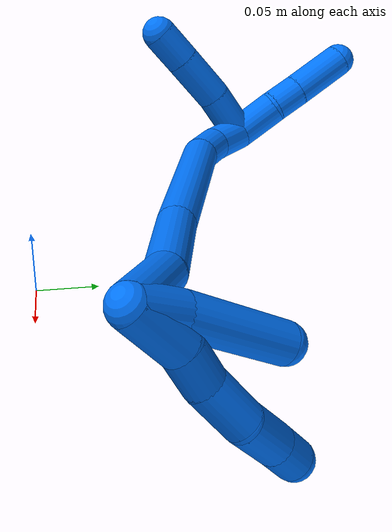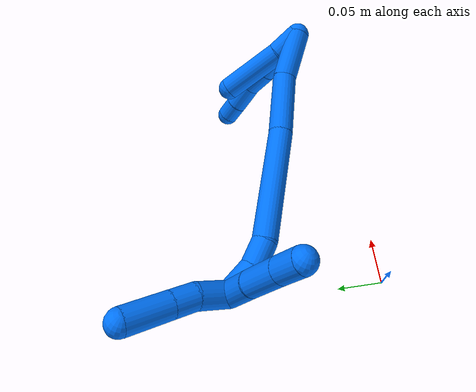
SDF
<sdf version="1.7">
 <world name="default">
  <model name="14">
   <static>0</static>
   <link name="14">
    <collision name="collision-cylinder-e_1_2_8">
     <pose>0.003959 0.004363 -0.018154 -2.90571 0.20896 -1.44891</pose>
     <geometry><cylinder><radius>0.0125</radius><length>0.038173</length></cylinder></geometry>
     <surface>
      <friction><ode><mu>1.16</mu><mu2>1.16</mu2><slip1>0</slip1><slip2>0</slip2></ode></friction>
      <contact><ode><kp>1e+06</kp><kd>1</kd><max_vel>0</max_vel><min_depth>0.001</min_depth></ode></contact>
     </surface>
    </collision>
    <visual name="visual-cylinder-e_1_2_8">
     <pose>0.003959 0.004363 -0.018154 -2.90571 0.20896 -1.44891</pose>
     <geometry><cylinder><radius>0.0125</radius><length>0.038173</length></cylinder></geometry>
     <material><ambient>0 0.462745 1 1</ambient></material>
    </visual>
    <collision name="collision-cylinder-e_2_8_9">
     <pose>0.011918 0.008825 -0.048424 -3.13349 0.318813 -3.09123</pose>
     <geometry><cylinder><radius>0.0125</radius><length>0.025517</length></cylinder></geometry>
     <surface>
      <friction><ode><mu>1.16</mu><mu2>1.16</mu2><slip1>0</slip1><slip2>0</slip2></ode></friction>
      <contact><ode><kp>1e+06</kp><kd>1</kd><max_vel>0</max_vel><min_depth>0.001</min_depth></ode></contact>
     </surface>
    </collision>
    <visual name="visual-cylinder-e_2_8_9">
     <pose>0.011918 0.008825 -0.048424 -3.13349 0.318813 -3.09123</pose>
     <geometry><cylinder><radius>0.0125</radius><length>0.025517</length></cylinder></geometry>
     <material><ambient>0 0.462745 1 1</ambient></material>
    </visual>
    <collision name="collision-cylinder-e_3_9_10">
     <pose>0.021602 0.012352 -0.075703 -2.91922 0.350565 -2.01661</pose>
     <geometry><cylinder><radius>0.0125</radius><length>0.033107</length></cylinder></geometry>
     <surface>
      <friction><ode><mu>1.16</mu><mu2>1.16</mu2><slip1>0</slip1><slip2>0</slip2></ode></friction>
      <contact><ode><kp>1e+06</kp><kd>1</kd><max_vel>0</max_vel><min_depth>0.001</min_depth></ode></contact>
     </surface>
    </collision>
    <visual name="visual-cylinder-e_3_9_10">
     <pose>0.021602 0.012352 -0.075703 -2.91922 0.350565 -2.01661</pose>
     <geometry><cylinder><radius>0.0125</radius><length>0.033107</length></cylinder></geometry>
     <material><ambient>0 0.462745 1 1</ambient></material>
    </visual>
    <collision name="collision-cylinder-e_4_10_11">
     <pose>0.028377 0.018653 -0.106677 -2.96189 0.067752 -0.719544</pose>
     <geometry><cylinder><radius>0.0125</radius><length>0.032212</length></cylinder></geometry>
     <surface>
      <friction><ode><mu>1.16</mu><mu2>1.16</mu2><slip1>0</slip1><slip2>0</slip2></ode></friction>
      <contact><ode><kp>1e+06</kp><kd>1</kd><max_vel>0</max_vel><min_depth>0.001</min_depth></ode></contact>
     </surface>
    </collision>
    <visual name="visual-cylinder-e_4_10_11">
     <pose>0.028377 0.018653 -0.106677 -2.96189 0.067752 -0.719544</pose>
     <geometry><cylinder><radius>0.0125</radius><length>0.032212</length></cylinder></geometry>
     <material><ambient>0 0.462745 1 1</ambient></material>
    </visual>
    <collision name="collision-cylinder-e_5_11_6">
     <pose>0.030719 0.02337 -0.132743 -2.96366 0.1195 -1.18146</pose>
     <geometry><cylinder><radius>0.0125</radius><length>0.020991</length></cylinder></geometry>
     <surface>
      <friction><ode><mu>1.16</mu><mu2>1.16</mu2><slip1>0</slip1><slip2>0</slip2></ode></friction>
      <contact><ode><kp>1e+06</kp><kd>1</kd><max_vel>0</max_vel><min_depth>0.001</min_depth></ode></contact>
     </surface>
    </collision>
    <visual name="visual-cylinder-e_5_11_6">
     <pose>0.030719 0.02337 -0.132743 -2.96366 0.1195 -1.18146</pose>
     <geometry><cylinder><radius>0.0125</radius><length>0.020991</length></cylinder></geometry>
     <material><ambient>0 0.462745 1 1</ambient></material>
    </visual>
    <collision name="collision-cylinder-e_1_2_12">
     <pose>-0.002387 0.007443 -0.013388 -2.6342 -0.154604 0.580582</pose>
     <geometry><cylinder><radius>0.0125</radius><length>0.031004</length></cylinder></geometry>
     <surface>
      <friction><ode><mu>1.16</mu><mu2>1.16</mu2><slip1>0</slip1><slip2>0</slip2></ode></friction>
      <contact><ode><kp>1e+06</kp><kd>1</kd><max_vel>0</max_vel><min_depth>0.001</min_depth></ode></contact>
     </surface>
    </collision>
    <visual name="visual-cylinder-e_1_2_12">
     <pose>-0.002387 0.007443 -0.013388 -2.6342 -0.154604 0.580582</pose>
     <geometry><cylinder><radius>0.0125</radius><length>0.031004</length></cylinder></geometry>
     <material><ambient>0 0.462745 1 1</ambient></material>
    </visual>
    <collision name="collision-cylinder-e_2_12_5">
     <pose>-0.004201 0.032487 -0.056439 -2.60605 0.016626 -0.060584</pose>
     <geometry><cylinder><radius>0.0125</radius><length>0.068996</length></cylinder></geometry>
     <surface>
      <friction><ode><mu>1.16</mu><mu2>1.16</mu2><slip1>0</slip1><slip2>0</slip2></ode></friction>
      <contact><ode><kp>1e+06</kp><kd>1</kd><max_vel>0</max_vel><min_depth>0.001</min_depth></ode></contact>
     </surface>
    </collision>
    <visual name="visual-cylinder-e_2_12_5">
     <pose>-0.004201 0.032487 -0.056439 -2.60605 0.016626 -0.060584</pose>
     <geometry><cylinder><radius>0.0125</radius><length>0.068996</length></cylinder></geometry>
     <material><ambient>0 0.462745 1 1</ambient></material>
    </visual>
    <collision name="collision-cylinder-e_1_2_13">
     <pose>-0.020091 0.004724 -0.01833 -2.88936 -0.815184 2.57035</pose>
     <geometry><cylinder><radius>0.0125</radius><length>0.055207</length></cylinder></geometry>
     <surface>
      <friction><ode><mu>1.16</mu><mu2>1.16</mu2><slip1>0</slip1><slip2>0</slip2></ode></friction>
      <contact><ode><kp>1e+06</kp><kd>1</kd><max_vel>0</max_vel><min_depth>0.001</min_depth></ode></contact>
     </surface>
    </collision>
    <visual name="visual-cylinder-e_1_2_13">
     <pose>-0.020091 0.004724 -0.01833 -2.88936 -0.815184 2.57035</pose>
     <geometry><cylinder><radius>0.0125</radius><length>0.055207</length></cylinder></geometry>
     <material><ambient>0 0.462745 1 1</ambient></material>
    </visual>
    <collision name="collision-cylinder-e_2_13_14">
     <pose>-0.06976 0.01134 -0.053275 -3.02823 -1.05623 2.94768</pose>
     <geometry><cylinder><radius>0.0125</radius><length>0.067955</length></cylinder></geometry>
     <surface>
      <friction><ode><mu>1.16</mu><mu2>1.16</mu2><slip1>0</slip1><slip2>0</slip2></ode></friction>
      <contact><ode><kp>1e+06</kp><kd>1</kd><max_vel>0</max_vel><min_depth>0.001</min_depth></ode></contact>
     </surface>
    </collision>
    <visual name="visual-cylinder-e_2_13_14">
     <pose>-0.06976 0.01134 -0.053275 -3.02823 -1.05623 2.94768</pose>
     <geometry><cylinder><radius>0.0125</radius><length>0.067955</length></cylinder></geometry>
     <material><ambient>0 0.462745 1 1</ambient></material>
    </visual>
    <collision name="collision-cylinder-e_3_14_15">
     <pose>-0.151264 0.021557 -0.097072 -2.84436 -1.06989 2.64663</pose>
     <geometry><cylinder><radius>0.0125</radius><length>0.118397</length></cylinder></geometry>
     <surface>
      <friction><ode><mu>1.16</mu><mu2>1.16</mu2><slip1>0</slip1><slip2>0</slip2></ode></friction>
      <contact><ode><kp>1e+06</kp><kd>1</kd><max_vel>0</max_vel><min_depth>0.001</min_depth></ode></contact>
     </surface>
    </collision>
    <visual name="visual-cylinder-e_3_14_15">
     <pose>-0.151264 0.021557 -0.097072 -2.84436 -1.06989 2.64663</pose>
     <geometry><cylinder><radius>0.0125</radius><length>0.118397</length></cylinder></geometry>
     <material><ambient>0 0.462745 1 1</ambient></material>
    </visual>
    <collision name="collision-cylinder-e_4_15_16">
     <pose>-0.213381 0.034719 -0.131994 -2.58323 -0.840418 2.00074</pose>
     <geometry><cylinder><radius>0.0125</radius><length>0.02736</length></cylinder></geometry>
     <surface>
      <friction><ode><mu>1.16</mu><mu2>1.16</mu2><slip1>0</slip1><slip2>0</slip2></ode></friction>
      <contact><ode><kp>1e+06</kp><kd>1</kd><max_vel>0</max_vel><min_depth>0.001</min_depth></ode></contact>
     </surface>
    </collision>
    <visual name="visual-cylinder-e_4_15_16">
     <pose>-0.213381 0.034719 -0.131994 -2.58323 -0.840418 2.00074</pose>
     <geometry><cylinder><radius>0.0125</radius><length>0.02736</length></cylinder></geometry>
     <material><ambient>0 0.462745 1 1</ambient></material>
    </visual>
    <collision name="collision-cylinder-e_5_16_1">
     <pose>-0.232666 0.049002 -0.148072 -2.29383 -0.625155 1.24303</pose>
     <geometry><cylinder><radius>0.0125</radius><length>0.03108</length></cylinder></geometry>
     <surface>
      <friction><ode><mu>1.16</mu><mu2>1.16</mu2><slip1>0</slip1><slip2>0</slip2></ode></friction>
      <contact><ode><kp>1e+06</kp><kd>1</kd><max_vel>0</max_vel><min_depth>0.001</min_depth></ode></contact>
     </surface>
    </collision>
    <visual name="visual-cylinder-e_5_16_1">
     <pose>-0.232666 0.049002 -0.148072 -2.29383 -0.625155 1.24303</pose>
     <geometry><cylinder><radius>0.0125</radius><length>0.03108</length></cylinder></geometry>
     <material><ambient>0 0.462745 1 1</ambient></material>
    </visual>
    <collision name="collision-cylinder-e_1_1_17">
     <pose>-0.248405 0.056188 -0.139776 0.135166 -0.376946 -0.025819</pose>
     <geometry><cylinder><radius>0.0125</radius><length>0.036109</length></cylinder></geometry>
     <surface>
      <friction><ode><mu>1.16</mu><mu2>1.16</mu2><slip1>0</slip1><slip2>0</slip2></ode></friction>
      <contact><ode><kp>1e+06</kp><kd>1</kd><max_vel>0</max_vel><min_depth>0.001</min_depth></ode></contact>
     </surface>
    </collision>
    <visual name="visual-cylinder-e_1_1_17">
     <pose>-0.248405 0.056188 -0.139776 0.135166 -0.376946 -0.025819</pose>
     <geometry><cylinder><radius>0.0125</radius><length>0.036109</length></cylinder></geometry>
     <material><ambient>0 0.462745 1 1</ambient></material>
    </visual>
    <collision name="collision-cylinder-e_2_17_18">
     <pose>-0.261235 0.049552 -0.105925 0.248773 -0.33501 -0.042277</pose>
     <geometry><cylinder><radius>0.0125</radius><length>0.037619</length></cylinder></geometry>
     <surface>
      <friction><ode><mu>1.16</mu><mu2>1.16</mu2><slip1>0</slip1><slip2>0</slip2></ode></friction>
      <contact><ode><kp>1e+06</kp><kd>1</kd><max_vel>0</max_vel><min_depth>0.001</min_depth></ode></contact>
     </surface>
    </collision>
    <visual name="visual-cylinder-e_2_17_18">
     <pose>-0.261235 0.049552 -0.105925 0.248773 -0.33501 -0.042277</pose>
     <geometry><cylinder><radius>0.0125</radius><length>0.037619</length></cylinder></geometry>
     <material><ambient>0 0.462745 1 1</ambient></material>
    </visual>
    <collision name="collision-cylinder-e_3_18_4">
     <pose>-0.271949 0.042013 -0.076791 0.25963 -0.352087 -0.046437</pose>
     <geometry><cylinder><radius>0.0125</radius><length>0.026273</length></cylinder></geometry>
     <surface>
      <friction><ode><mu>1.16</mu><mu2>1.16</mu2><slip1>0</slip1><slip2>0</slip2></ode></friction>
      <contact><ode><kp>1e+06</kp><kd>1</kd><max_vel>0</max_vel><min_depth>0.001</min_depth></ode></contact>
     </surface>
    </collision>
    <visual name="visual-cylinder-e_3_18_4">
     <pose>-0.271949 0.042013 -0.076791 0.25963 -0.352087 -0.046437</pose>
     <geometry><cylinder><radius>0.0125</radius><length>0.026273</length></cylinder></geometry>
     <material><ambient>0 0.462745 1 1</ambient></material>
    </visual>
    <collision name="collision-cylinder-e_1_1_19">
     <pose>-0.245443 0.075001 -0.155217 -1.49886 -0.21844 0.203375</pose>
     <geometry><cylinder><radius>0.0125</radius><length>0.033995</length></cylinder></geometry>
     <surface>
      <friction><ode><mu>1.16</mu><mu2>1.16</mu2><slip1>0</slip1><slip2>0</slip2></ode></friction>
      <contact><ode><kp>1e+06</kp><kd>1</kd><max_vel>0</max_vel><min_depth>0.001</min_depth></ode></contact>
     </surface>
    </collision>
    <visual name="visual-cylinder-e_1_1_19">
     <pose>-0.245443 0.075001 -0.155217 -1.49886 -0.21844 0.203375</pose>
     <geometry><cylinder><radius>0.0125</radius><length>0.033995</length></cylinder></geometry>
     <material><ambient>0 0.462745 1 1</ambient></material>
    </visual>
    <collision name="collision-cylinder-e_2_19_20">
     <pose>-0.253332 0.102056 -0.155359 -1.69717 -0.378047 0.427662</pose>
     <geometry><cylinder><radius>0.0125</radius><length>0.022787</length></cylinder></geometry>
     <surface>
      <friction><ode><mu>1.16</mu><mu2>1.16</mu2><slip1>0</slip1><slip2>0</slip2></ode></friction>
      <contact><ode><kp>1e+06</kp><kd>1</kd><max_vel>0</max_vel><min_depth>0.001</min_depth></ode></contact>
     </surface>
    </collision>
    <visual name="visual-cylinder-e_2_19_20">
     <pose>-0.253332 0.102056 -0.155359 -1.69717 -0.378047 0.427662</pose>
     <geometry><cylinder><radius>0.0125</radius><length>0.022787</length></cylinder></geometry>
     <material><ambient>0 0.462745 1 1</ambient></material>
    </visual>
    <collision name="collision-cylinder-e_3_20_3">
     <pose>-0.265745 0.132431 -0.158875 -1.68015 -0.389562 0.433344</pose>
     <geometry><cylinder><radius>0.0125</radius><length>0.043218</length></cylinder></geometry>
     <surface>
      <friction><ode><mu>1.16</mu><mu2>1.16</mu2><slip1>0</slip1><slip2>0</slip2></ode></friction>
      <contact><ode><kp>1e+06</kp><kd>1</kd><max_vel>0</max_vel><min_depth>0.001</min_depth></ode></contact>
     </surface>
    </collision>
    <visual name="visual-cylinder-e_3_20_3">
     <pose>-0.265745 0.132431 -0.158875 -1.68015 -0.389562 0.433344</pose>
     <geometry><cylinder><radius>0.0125</radius><length>0.043218</length></cylinder></geometry>
     <material><ambient>0 0.462745 1 1</ambient></material>
    </visual>
    <collision name="collision-sphere-3">
     <pose>-0.273951 0.152302 -0.161057 0 -0 0</pose>
     <geometry><sphere><radius>0.0125</radius></sphere></geometry>
     <surface>
      <friction><ode><mu>1.16</mu><mu2>1.16</mu2><slip1>0</slip1><slip2>0</slip2></ode></friction>
      <contact><ode><kp>1e+06</kp><kd>1</kd><max_vel>0</max_vel><min_depth>0.001</min_depth></ode></contact>
     </surface>
    </collision>
    <visual name="visual-sphere-3">
     <pose>-0.273951 0.152302 -0.161057 0 -0 0</pose>
     <geometry><sphere><radius>0.0125</radius></sphere></geometry>
     <material><ambient>0 0.462745 1 1</ambient></material>
    </visual>
    <collision name="collision-sphere-20">
     <pose>-0.257538 0.11256 -0.156694 0 -0 0</pose>
     <geometry><sphere><radius>0.0125</radius></sphere></geometry>
     <surface>
      <friction><ode><mu>1.16</mu><mu2>1.16</mu2><slip1>0</slip1><slip2>0</slip2></ode></friction>
      <contact><ode><kp>1e+06</kp><kd>1</kd><max_vel>0</max_vel><min_depth>0.001</min_depth></ode></contact>
     </surface>
    </collision>
    <visual name="visual-sphere-20">
     <pose>-0.257538 0.11256 -0.156694 0 -0 0</pose>
     <geometry><sphere><radius>0.0125</radius></sphere></geometry>
     <material><ambient>0 0.462745 1 1</ambient></material>
    </visual>
    <collision name="collision-sphere-19">
     <pose>-0.249127 0.091551 -0.154024 0 -0 0</pose>
     <geometry><sphere><radius>0.0125</radius></sphere></geometry>
     <surface>
      <friction><ode><mu>1.16</mu><mu2>1.16</mu2><slip1>0</slip1><slip2>0</slip2></ode></friction>
      <contact><ode><kp>1e+06</kp><kd>1</kd><max_vel>0</max_vel><min_depth>0.001</min_depth></ode></contact>
     </surface>
    </collision>
    <visual name="visual-sphere-19">
     <pose>-0.249127 0.091551 -0.154024 0 -0 0</pose>
     <geometry><sphere><radius>0.0125</radius></sphere></geometry>
     <material><ambient>0 0.462745 1 1</ambient></material>
    </visual>
    <collision name="collision-sphere-6">
     <pose>0.03197 0.025214 -0.142999 0 -0 0</pose>
     <geometry><sphere><radius>0.0125</radius></sphere></geometry>
     <surface>
      <friction><ode><mu>1.16</mu><mu2>1.16</mu2><slip1>0</slip1><slip2>0</slip2></ode></friction>
      <contact><ode><kp>1e+06</kp><kd>1</kd><max_vel>0</max_vel><min_depth>0.001</min_depth></ode></contact>
     </surface>
    </collision>
    <visual name="visual-sphere-6">
     <pose>0.03197 0.025214 -0.142999 0 -0 0</pose>
     <geometry><sphere><radius>0.0125</radius></sphere></geometry>
     <material><ambient>0 0.462745 1 1</ambient></material>
    </visual>
    <collision name="collision-sphere-11">
     <pose>0.029467 0.021525 -0.122487 0 -0 0</pose>
     <geometry><sphere><radius>0.0125</radius></sphere></geometry>
     <surface>
      <friction><ode><mu>1.16</mu><mu2>1.16</mu2><slip1>0</slip1><slip2>0</slip2></ode></friction>
      <contact><ode><kp>1e+06</kp><kd>1</kd><max_vel>0</max_vel><min_depth>0.001</min_depth></ode></contact>
     </surface>
    </collision>
    <visual name="visual-sphere-11">
     <pose>0.029467 0.021525 -0.122487 0 -0 0</pose>
     <geometry><sphere><radius>0.0125</radius></sphere></geometry>
     <material><ambient>0 0.462745 1 1</ambient></material>
    </visual>
    <collision name="collision-sphere-10">
     <pose>0.027287 0.015781 -0.090867 0 -0 0</pose>
     <geometry><sphere><radius>0.0125</radius></sphere></geometry>
     <surface>
      <friction><ode><mu>1.16</mu><mu2>1.16</mu2><slip1>0</slip1><slip2>0</slip2></ode></friction>
      <contact><ode><kp>1e+06</kp><kd>1</kd><max_vel>0</max_vel><min_depth>0.001</min_depth></ode></contact>
     </surface>
    </collision>
    <visual name="visual-sphere-10">
     <pose>0.027287 0.015781 -0.090867 0 -0 0</pose>
     <geometry><sphere><radius>0.0125</radius></sphere></geometry>
     <material><ambient>0 0.462745 1 1</ambient></material>
    </visual>
    <collision name="collision-sphere-9">
     <pose>0.015917 0.008923 -0.060539 0 -0 0</pose>
     <geometry><sphere><radius>0.0125</radius></sphere></geometry>
     <surface>
      <friction><ode><mu>1.16</mu><mu2>1.16</mu2><slip1>0</slip1><slip2>0</slip2></ode></friction>
      <contact><ode><kp>1e+06</kp><kd>1</kd><max_vel>0</max_vel><min_depth>0.001</min_depth></ode></contact>
     </surface>
    </collision>
    <visual name="visual-sphere-9">
     <pose>0.015917 0.008923 -0.060539 0 -0 0</pose>
     <geometry><sphere><radius>0.0125</radius></sphere></geometry>
     <material><ambient>0 0.462745 1 1</ambient></material>
    </visual>
    <collision name="collision-sphere-2">
     <geometry><sphere><radius>0.0125</radius></sphere></geometry>
     <surface>
      <friction><ode><mu>1.16</mu><mu2>1.16</mu2><slip1>0</slip1><slip2>0</slip2></ode></friction>
      <contact><ode><kp>1e+06</kp><kd>1</kd><max_vel>0</max_vel><min_depth>0.001</min_depth></ode></contact>
     </surface>
    </collision>
    <visual name="visual-sphere-2">
     <geometry><sphere><radius>0.0125</radius></sphere></geometry>
     <material><ambient>0 0.462745 1 1</ambient></material>
    </visual>
    <collision name="collision-sphere-8">
     <pose>0.007919 0.008727 -0.036309 0 -0 0</pose>
     <geometry><sphere><radius>0.0125</radius></sphere></geometry>
     <surface>
      <friction><ode><mu>1.16</mu><mu2>1.16</mu2><slip1>0</slip1><slip2>0</slip2></ode></friction>
      <contact><ode><kp>1e+06</kp><kd>1</kd><max_vel>0</max_vel><min_depth>0.001</min_depth></ode></contact>
     </surface>
    </collision>
    <visual name="visual-sphere-8">
     <pose>0.007919 0.008727 -0.036309 0 -0 0</pose>
     <geometry><sphere><radius>0.0125</radius></sphere></geometry>
     <material><ambient>0 0.462745 1 1</ambient></material>
    </visual>
    <collision name="collision-sphere-12">
     <pose>-0.004774 0.014885 -0.026775 0 -0 0</pose>
     <geometry><sphere><radius>0.0125</radius></sphere></geometry>
     <surface>
      <friction><ode><mu>1.16</mu><mu2>1.16</mu2><slip1>0</slip1><slip2>0</slip2></ode></friction>
      <contact><ode><kp>1e+06</kp><kd>1</kd><max_vel>0</max_vel><min_depth>0.001</min_depth></ode></contact>
     </surface>
    </collision>
    <visual name="visual-sphere-12">
     <pose>-0.004774 0.014885 -0.026775 0 -0 0</pose>
     <geometry><sphere><radius>0.0125</radius></sphere></geometry>
     <material><ambient>0 0.462745 1 1</ambient></material>
    </visual>
    <collision name="collision-sphere-5">
     <pose>-0.003627 0.050089 -0.086103 0 -0 0</pose>
     <geometry><sphere><radius>0.0125</radius></sphere></geometry>
     <surface>
      <friction><ode><mu>1.16</mu><mu2>1.16</mu2><slip1>0</slip1><slip2>0</slip2></ode></friction>
      <contact><ode><kp>1e+06</kp><kd>1</kd><max_vel>0</max_vel><min_depth>0.001</min_depth></ode></contact>
     </surface>
    </collision>
    <visual name="visual-sphere-5">
     <pose>-0.003627 0.050089 -0.086103 0 -0 0</pose>
     <geometry><sphere><radius>0.0125</radius></sphere></geometry>
     <material><ambient>0 0.462745 1 1</ambient></material>
    </visual>
    <collision name="collision-sphere-13">
     <pose>-0.040183 0.009448 -0.03666 0 -0 0</pose>
     <geometry><sphere><radius>0.0125</radius></sphere></geometry>
     <surface>
      <friction><ode><mu>1.16</mu><mu2>1.16</mu2><slip1>0</slip1><slip2>0</slip2></ode></friction>
      <contact><ode><kp>1e+06</kp><kd>1</kd><max_vel>0</max_vel><min_depth>0.001</min_depth></ode></contact>
     </surface>
    </collision>
    <visual name="visual-sphere-13">
     <pose>-0.040183 0.009448 -0.03666 0 -0 0</pose>
     <geometry><sphere><radius>0.0125</radius></sphere></geometry>
     <material><ambient>0 0.462745 1 1</ambient></material>
    </visual>
    <collision name="collision-sphere-14">
     <pose>-0.099338 0.013231 -0.06989 0 -0 0</pose>
     <geometry><sphere><radius>0.0125</radius></sphere></geometry>
     <surface>
      <friction><ode><mu>1.16</mu><mu2>1.16</mu2><slip1>0</slip1><slip2>0</slip2></ode></friction>
      <contact><ode><kp>1e+06</kp><kd>1</kd><max_vel>0</max_vel><min_depth>0.001</min_depth></ode></contact>
     </surface>
    </collision>
    <visual name="visual-sphere-14">
     <pose>-0.099338 0.013231 -0.06989 0 -0 0</pose>
     <geometry><sphere><radius>0.0125</radius></sphere></geometry>
     <material><ambient>0 0.462745 1 1</ambient></material>
    </visual>
    <collision name="collision-sphere-15">
     <pose>-0.20319 0.029883 -0.124253 0 -0 0</pose>
     <geometry><sphere><radius>0.0125</radius></sphere></geometry>
     <surface>
      <friction><ode><mu>1.16</mu><mu2>1.16</mu2><slip1>0</slip1><slip2>0</slip2></ode></friction>
      <contact><ode><kp>1e+06</kp><kd>1</kd><max_vel>0</max_vel><min_depth>0.001</min_depth></ode></contact>
     </surface>
    </collision>
    <visual name="visual-sphere-15">
     <pose>-0.20319 0.029883 -0.124253 0 -0 0</pose>
     <geometry><sphere><radius>0.0125</radius></sphere></geometry>
     <material><ambient>0 0.462745 1 1</ambient></material>
    </visual>
    <collision name="collision-sphere-16">
     <pose>-0.223571 0.039554 -0.139734 0 -0 0</pose>
     <geometry><sphere><radius>0.0125</radius></sphere></geometry>
     <surface>
      <friction><ode><mu>1.16</mu><mu2>1.16</mu2><slip1>0</slip1><slip2>0</slip2></ode></friction>
      <contact><ode><kp>1e+06</kp><kd>1</kd><max_vel>0</max_vel><min_depth>0.001</min_depth></ode></contact>
     </surface>
    </collision>
    <visual name="visual-sphere-16">
     <pose>-0.223571 0.039554 -0.139734 0 -0 0</pose>
     <geometry><sphere><radius>0.0125</radius></sphere></geometry>
     <material><ambient>0 0.462745 1 1</ambient></material>
    </visual>
    <collision name="collision-sphere-1">
     <pose>-0.24176 0.05845 -0.15641 0 -0 0</pose>
     <geometry><sphere><radius>0.0125</radius></sphere></geometry>
     <surface>
      <friction><ode><mu>1.16</mu><mu2>1.16</mu2><slip1>0</slip1><slip2>0</slip2></ode></friction>
      <contact><ode><kp>1e+06</kp><kd>1</kd><max_vel>0</max_vel><min_depth>0.001</min_depth></ode></contact>
     </surface>
    </collision>
    <visual name="visual-sphere-1">
     <pose>-0.24176 0.05845 -0.15641 0 -0 0</pose>
     <geometry><sphere><radius>0.0125</radius></sphere></geometry>
     <material><ambient>0 0.462745 1 1</ambient></material>
    </visual>
    <collision name="collision-sphere-18">
     <pose>-0.267419 0.045179 -0.088709 0 -0 0</pose>
     <geometry><sphere><radius>0.0125</radius></sphere></geometry>
     <surface>
      <friction><ode><mu>1.16</mu><mu2>1.16</mu2><slip1>0</slip1><slip2>0</slip2></ode></friction>
      <contact><ode><kp>1e+06</kp><kd>1</kd><max_vel>0</max_vel><min_depth>0.001</min_depth></ode></contact>
     </surface>
    </collision>
    <visual name="visual-sphere-18">
     <pose>-0.267419 0.045179 -0.088709 0 -0 0</pose>
     <geometry><sphere><radius>0.0125</radius></sphere></geometry>
     <material><ambient>0 0.462745 1 1</ambient></material>
    </visual>
    <collision name="collision-sphere-17">
     <pose>-0.255051 0.053926 -0.123142 0 -0 0</pose>
     <geometry><sphere><radius>0.0125</radius></sphere></geometry>
     <surface>
      <friction><ode><mu>1.16</mu><mu2>1.16</mu2><slip1>0</slip1><slip2>0</slip2></ode></friction>
      <contact><ode><kp>1e+06</kp><kd>1</kd><max_vel>0</max_vel><min_depth>0.001</min_depth></ode></contact>
     </surface>
    </collision>
    <visual name="visual-sphere-17">
     <pose>-0.255051 0.053926 -0.123142 0 -0 0</pose>
     <geometry><sphere><radius>0.0125</radius></sphere></geometry>
     <material><ambient>0 0.462745 1 1</ambient></material>
    </visual>
    <collision name="collision-sphere-4">
     <pose>-0.27648 0.038848 -0.064874 0 -0 0</pose>
     <geometry><sphere><radius>0.0125</radius></sphere></geometry>
     <surface>
      <friction><ode><mu>1.16</mu><mu2>1.16</mu2><slip1>0</slip1><slip2>0</slip2></ode></friction>
      <contact><ode><kp>1e+06</kp><kd>1</kd><max_vel>0</max_vel><min_depth>0.001</min_depth></ode></contact>
     </surface>
    </collision>
    <visual name="visual-sphere-4">
     <pose>-0.27648 0.038848 -0.064874 0 -0 0</pose>
     <geometry><sphere><radius>0.0125</radius></sphere></geometry>
     <material><ambient>0 0.462745 1 1</ambient></material>
    </visual>
    <inertial>
     <pose>-0.114675 0.034688 -0.088051 0 -0 0</pose>
     <mass>0.75</mass>
     <inertia><ixx>-9e-06</ixx><ixy>0</ixy><ixz>0</ixz><iyy>0.000223</iyy><iyz>0</iyz><izz>8.9e-05</izz></inertia>
    </inertial>
   </link>
   <pose>0.258752 0.056701 0.129924 0.494427 0.387425 0.062866</pose>
  </model>
 </world>
</sdf>
